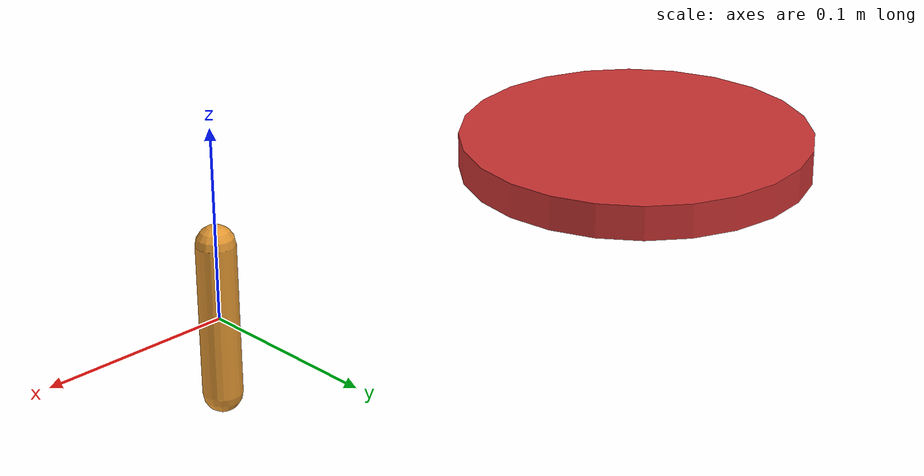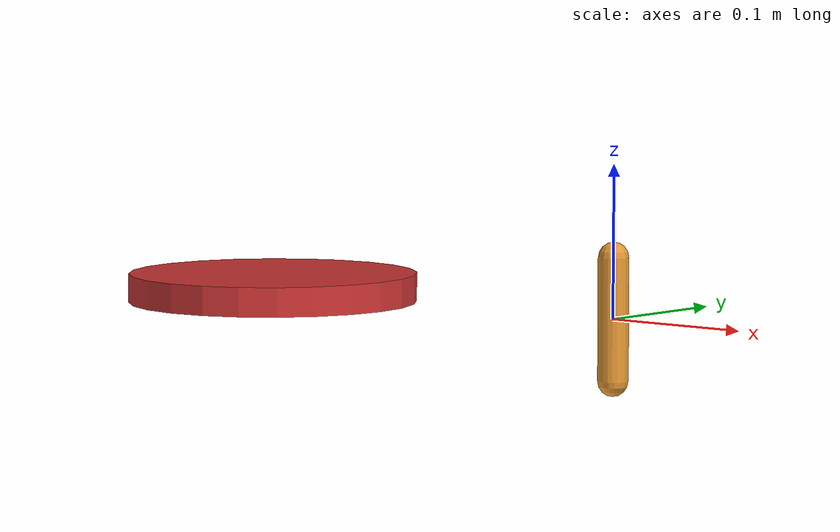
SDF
<?xml version="1.0"?>
<sdf version="1.7">
  <model name="large_pulley">
    <pose>-0.3 0 0 0 0 0</pose>
    <link name="link">
      <inertial><mass>0.1</mass></inertial>
      <visual name="visual">
        <geometry>
          <cylinder>
            <radius>0.1</radius>
            <length>0.02</length>
          </cylinder>
        </geometry>
        <material><diffuse>0.8 0.2 0.2 1</diffuse></material>
      </visual>
      <collision name="collision">
        <geometry>
          <cylinder>
            <radius>0.1</radius>
            <length>0.02</length>
          </cylinder>
        </geometry>
      </collision>
    </link>
    <joint name="joint" type="revolute">
      <parent>world</parent>
      <child>link</child>
      <axis><xyz>0 1 0</xyz></axis>
    </joint>
  </model>

  <model name="belt_link_template">
    <link name="link">
      <inertial><mass>0.01</mass></inertial>
      <visual name="visual">
        <geometry>
          <capsule>
            <radius>0.01</radius>
            <length>0.08</length>
          </capsule>
        </geometry>
        <material><diffuse>0.9 0.6 0.2 1</diffuse></material>
      </visual>
      <collision name="collision">
        <geometry><capsule><radius>0.01</radius><length>0.08</length></capsule></geometry>
      </collision>
    </link>
  </model>
</sdf>
